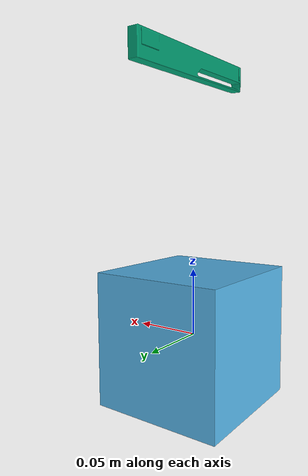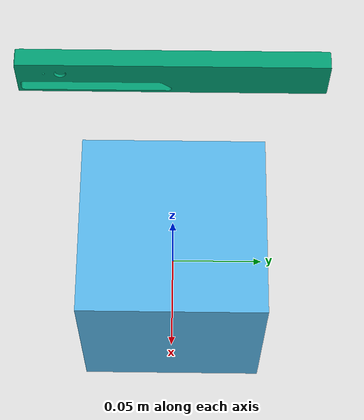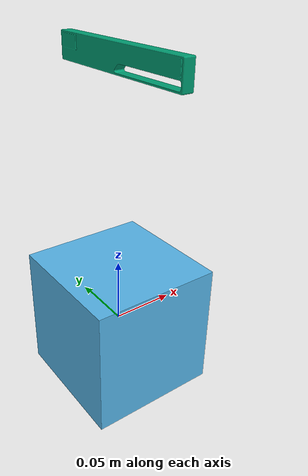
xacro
<?xml version="1.0"?>
<!--Develped by Maik93 on 29.10.2018
  INFORMATION:
    This is an example of how to use the realsense-rs200 macro function attached to other links.
-->
<robot name="robot_with_rs200" xmlns:xacro="http://ros.org/wiki/xacro">
    <!-- Import macro for realsense-RS200 camera-->
    <xacro:include filename="$(find realsense_gazebo_plugin)/urdf/realsense-RS200.macro.xacro"/>

    <!-- Gazebo world link required to position the robot with respect to origin -->
    <link name="world"/>

    <!-- main body of the robot -->
    <link name="box">
        <visual>
            <origin rpy="0 0 0" xyz="0 0 0"/>
            <geometry>
                <box size="0.1 0.1 0.1"/>
            </geometry>
        </visual>
        <collision name="box_collision">
            <origin rpy="0 0 0" xyz="0 0 0"/>
            <geometry>
                <box size="0.1 0.1 0.1"/>
            </geometry>
        </collision>
    </link>

    <xacro:realsense-rs200 parent_link="box" origin_z="0.2"/>

    <!-- world link is only a reference for your odometry -->
    <joint name="world_joint" type="floating">
        <parent link="world"/>
        <child link="box"/>
    </joint>

    <!-- Place camera rigidly connected to box frame -->
    <joint name="realsense_joint" type="fixed">
        <parent link="box"/>
        <child link="rs200_camera"/>
        <origin rpy="0 0 0" xyz="0 0 0.2"/>
    </joint>
</robot>

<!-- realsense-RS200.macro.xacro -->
<robot xmlns:xacro="http://ros.org/wiki/xacro">
<xacro:macro name="realsense-rs200" params="parent_link:='rs200_camera' origin_x:=0 origin_y:=0 origin_z:=0">

    <!-- Camera link -->
    <link name="rs200_camera">
        <visual>
            <origin rpy="0 0 0" xyz="0 0 0"/>
            <geometry>
                <mesh filename="package://realsense_gazebo_plugin/models/realsense_camera/meshes/realsense.dae"/>
            </geometry>
        </visual>
        <collision>
            <geometry>
                <box size="0.0078 0.130 0.0192"/>
            </geometry>
        </collision>
        <inertial>
            <mass value="0.0615752"/>
            <origin rpy="0 0 0" xyz="0 0 0"/>
            <inertia ixx="9.108e-05"
                     ixy="0"
                     ixz="0"
                     iyy="2.51e-06"
                     iyz="0"
                     izz="8.931e-05"
            />
        </inertial>
    </link>

    <!-- Virtual links representing the cameras positons and orientations-->
    <link name="color" />
    <link name="depth" />
    <link name="ired1" />
    <link name="ired2" />

    <!-- Joints positioning the virtual links with respect to the camera main link-->
    <joint name="color_joint" type="fixed">
        <parent link="rs200_camera" />
        <child link="color" />
        <!-- The default position is changed since in Rviz the cloud depth axis is Z not X-->
        <origin xyz="0 -0.046 0.004" rpy="${pi/2} ${pi} ${pi/2}"/>
    </joint>

    <joint name="depth_joint" type="fixed">
        <parent link="rs200_camera" />
        <child link="depth" />
        <origin xyz="0 -0.03 0.004" rpy="0 0 0"/>
    </joint>

    <joint name="ired1_joint" type="fixed">
        <parent link="rs200_camera" />
        <child link="ired1" />
        <origin xyz="0 -0.06 0.004" rpy="0 0 0"/>
    </joint>

    <joint name="ired2_joint" type="fixed">
        <parent link="rs200_camera" />
        <child link="ired2" />
        <origin xyz="0 0.01 0.004" rpy="0 0 0"/>
    </joint>

<!-- GAZEBO DEFINITIONS ***************************************-->

    <!-- Load plugin to the model ("robot" in urdf format)-->
    <gazebo>
        <plugin name="realsense_plugin" filename="librealsense_gazebo_plugin.so"/>
    </gazebo>

    <!-- Load parameters to model's main link-->
    <gazebo reference="${parent_link}">
        <self_collide>0</self_collide>
        <enable_wind>0</enable_wind>
        <kinematic>0</kinematic>
        <gravity>1</gravity>
        <mu2>1</mu2>
        <fdir1>0 0 0</fdir1>
        <kp>1e+13</kp>
        <kd>1</kd>

        <sensor name="color" type="camera">
            <pose frame="">${origin_x + 0} ${origin_y - 0.046} ${origin_z + 0.004} 0 0 0</pose>
            <camera name="__default__">
            <horizontal_fov>1.047</horizontal_fov>
            <image>
                <width>640</width>
                <height>480</height>
                <format>RGB_INT8</format>
            </image>
            <clip>
                <near>0.1</near>
                <far>100</far>
            </clip>
            <noise>
                <type>gaussian</type>
                <mean>0.0</mean>
                <stddev>0.007</stddev>
            </noise>
            </camera>
            <always_on>1</always_on>
            <update_rate>60</update_rate>
            <visualize>1</visualize>
        </sensor>
        <sensor name="ired1" type="camera">
            <pose frame="">${origin_x + 0} ${origin_y - 0.06} ${origin_z + 0.004} 0 0 0</pose>
            <camera name="__default__">
            <horizontal_fov>1.047</horizontal_fov>
            <image>
                <width>640</width>
                <height>480</height>
                <format>L_INT8</format>
            </image>
            <clip>
                <near>0.1</near>
                <far>100</far>
            </clip>
            <noise>
                <type>gaussian</type>
                <mean>0.0</mean>
                <stddev>0.05</stddev>
            </noise>
            </camera>
            <always_on>1</always_on>
            <update_rate>60</update_rate>
            <visualize>0</visualize>
        </sensor>
        <sensor name="ired2" type="camera">
            <pose frame="">${origin_x + 0} ${origin_y + 0.01} ${origin_z + 0.004} 0 0 0</pose>
            <camera name="__default__">
            <horizontal_fov>1.047</horizontal_fov>
            <image>
                <width>640</width>
                <height>480</height>
                <format>L_INT8</format>
            </image>
            <clip>
                <near>0.1</near>
                <far>100</far>
            </clip>
            <noise>
                <type>gaussian</type>
                <mean>0.0</mean>
                <stddev>0.05</stddev>
            </noise>
            </camera>
            <always_on>1</always_on>
            <update_rate>60</update_rate>
            <visualize>0</visualize>
        </sensor>
        <sensor name="depth" type="depth">
            <pose frame="">${origin_x + 0} ${origin_y - 0.03} ${origin_z + 0.004} 0 0 0</pose>
            <camera name="__default__">
            <horizontal_fov>1.047</horizontal_fov>
            <image>
                    <width>640</width>
                    <height>480</height>
            </image>
            <clip>
                    <near>0.1</near>
                    <far>100</far>
            </clip>
            <noise>
                    <type>gaussian</type>
                    <mean>0.0</mean>
                    <stddev>0.100</stddev>
            </noise>
            </camera>
            <always_on>1</always_on>
            <update_rate>60</update_rate>
            <visualize>0</visualize>
        </sensor>
    </gazebo>

</xacro:macro>
</robot>
